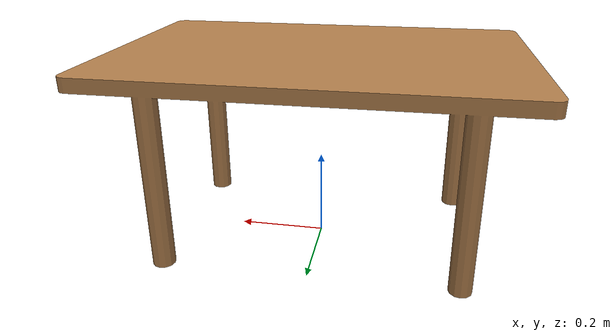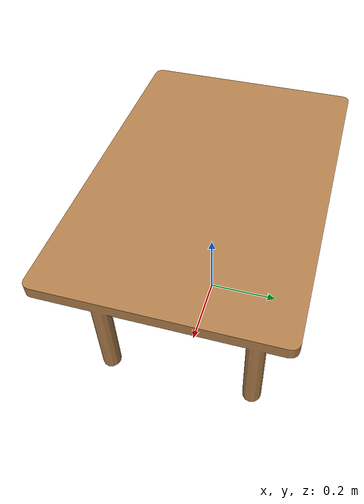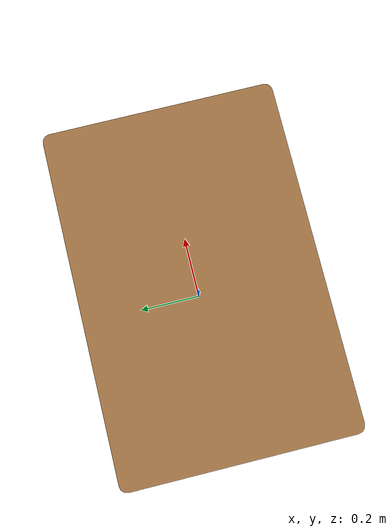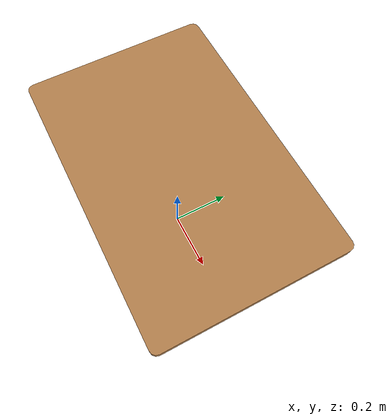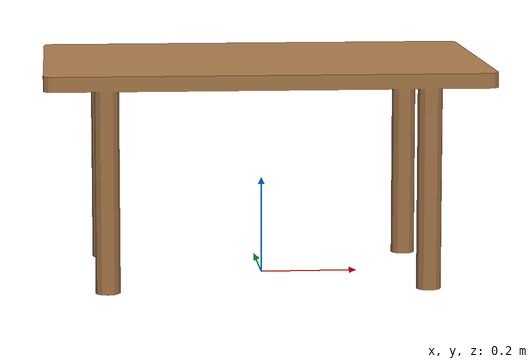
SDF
<sdf version='1.7'>
  <model name='Officedesk_G'>
    <link name='Officedesk_G'>
      <inertial>
        <pose>-0 0 0.39692 0 -0 0</pose>
        <mass>19.488</mass>
        <inertia>
          <ixx>0.806</ixx>
          <ixy>7.9409e-18</ixy>
          <ixz>-1.8106e-19</ixz>
          <iyy>1.6288</iyy>
          <iyz>1.811e-17</iyz>
          <izz>2.058</izz>
        </inertia>
      </inertial>
      <collision name='Officedesk_G_collision'>
        <pose>0 0 0 0 -0 0</pose>
        <geometry>
          <mesh>
            <scale>1 1 1</scale>
            <uri>model://Officedesk_G/meshes/Officedesk_G.STL</uri>
          </mesh>
        </geometry>
      </collision>
      <visual name='Officedesk_G_visual'>
        <pose>0 0 0 0 -0 0</pose>
        <geometry>
          <mesh>
            <scale>1 1 1</scale>
            <uri>model://Officedesk_G/meshes/Officedesk_G.STL</uri>
          </mesh>
        </geometry>
        <material>
          <script>
            <uri>file://media/materials/scripts/gazebo.material</uri>
            <name>Gazebo/Wood</name>
          </script>
        </material>
      </visual>
    </link>
  </model>
</sdf>
